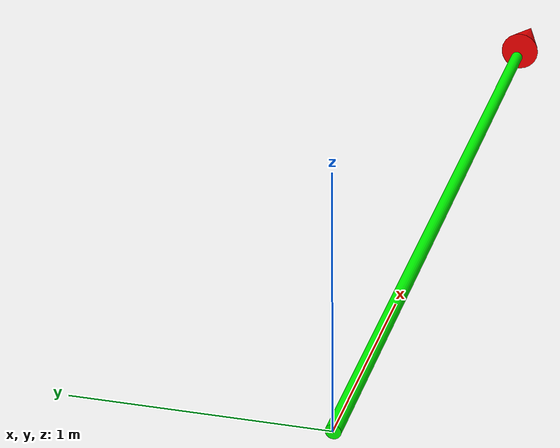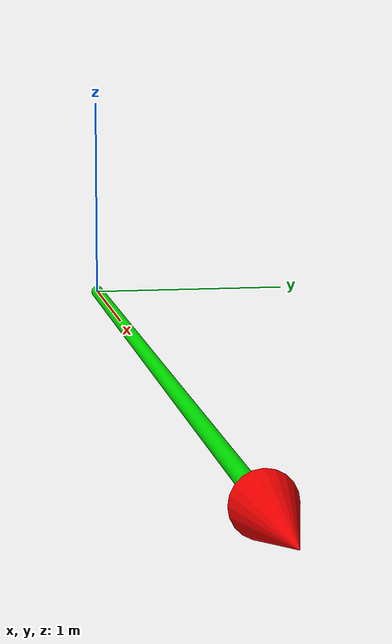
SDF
<?xml version="1.0"?>

<sdf version="1.9">

  <model name="wind_arrow">

    <static>true</static>

    <!-- LINK                                               -->

    <link name="arrow_link">

      <!-- shaft -->

      <visual name="shaft_visual">

        <!-- move forward half length -->
        <pose>2 0 0 0 1.5708 0</pose>

        <geometry>
          <cylinder>
            <radius>0.03</radius>
            <length>4.0</length>
          </cylinder>
        </geometry>

        <material>
          <ambient>0 1 0 1</ambient>
          <diffuse>0 1 0 1</diffuse>
        </material>

      </visual>

      <!-- arrow head -->

      <visual name="head_visual">

        <!-- tip at front -->
        <pose>4.3 0 0 0 1.5708 0</pose>

        <geometry>
          <cone>
            <radius>0.10</radius>
            <length>0.4</length>
          </cone>
        </geometry>

        <material>
          <ambient>1 0 0 1</ambient>
          <diffuse>1 0 0 1</diffuse>
        </material>

      </visual>

    </link>

  </model>

</sdf>
